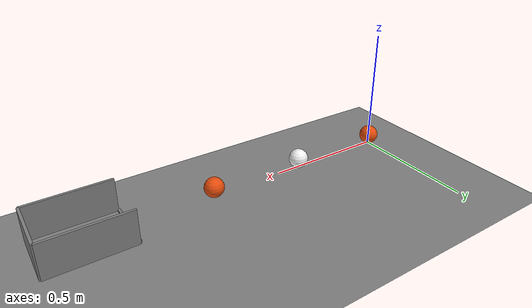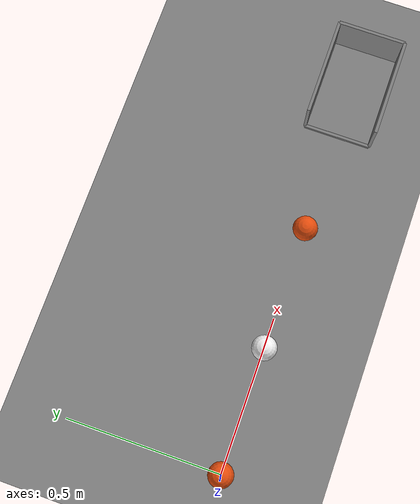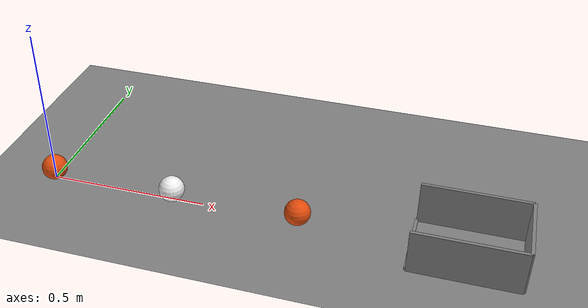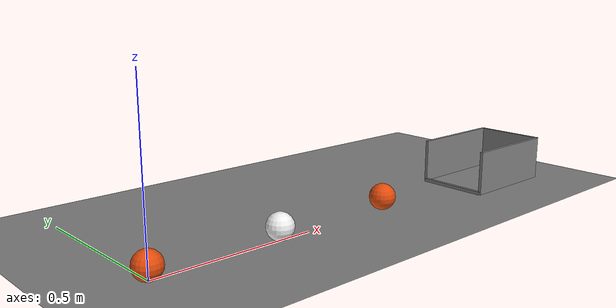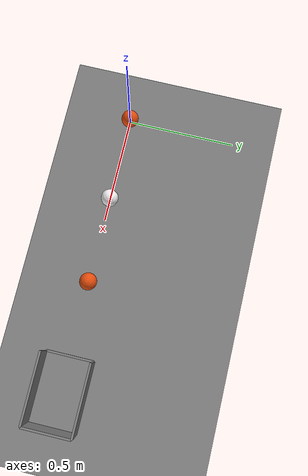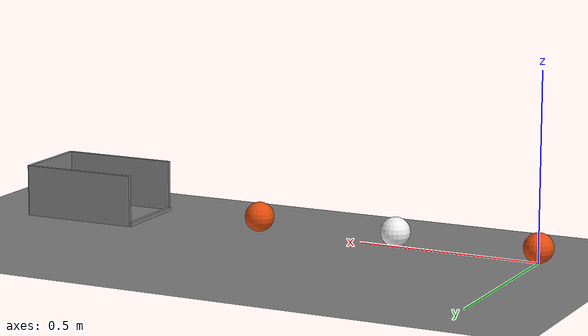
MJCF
<mujoco model="three_balls_rolling_into_a_cup">
  <compiler angle="radian"/>
  <option timestep="0.002"/>
  <worldbody>
    <geom name="floor" type="plane" size="6 6 0.1" friction="0.6 0.001 0.0002"/>
    <body name="ball1" pos="0 0 0.04">
      <freejoint/>
      <geom name="ball1" type="sphere" pos="0 0 0" size="0.04" mass="0.15" condim="6" friction="0.6 0.001 0.0002" solref="0.01 0.2" rgba="0.9 0.3 0.05 1"/>
    </body>
    <body name="ball2" pos="0.4 0 0.04">
      <freejoint/>
      <geom name="ball2" type="sphere" pos="0 0 0" size="0.04" mass="0.15" condim="6" friction="0.6 0.001 0.0002" solref="0.01 0.2" rgba="0.95 0.95 0.95 1"/>
    </body>
    <body name="ball3" pos="0.8 0 0.04">
      <freejoint/>
      <geom name="ball3" type="sphere" pos="0 0 0" size="0.04" mass="0.15" condim="6" friction="0.6 0.001 0.0002" solref="0.01 0.2" rgba="0.9 0.3 0.05 1"/>
    </body>
    <body name="cup">
      <geom name="cup_base" type="box" pos="1.3 0 0.0015" size="0.16 0.11 0.0015"/>
      <geom name="cup_near_wall" type="box" pos="1.14 0 0.005" size="0.005 0.11 0.005"/>
      <geom name="cup_far_wall" type="box" pos="1.46 0 0.07" size="0.005 0.11 0.07"/>
      <geom name="cup_left_wall" type="box" pos="1.3 0.11 0.07" size="0.16 0.005 0.07"/>
      <geom name="cup_right_wall" type="box" pos="1.3 -0.11 0.07" size="0.16 0.005 0.07"/>
    </body>
  </worldbody>
  <keyframe>
    <key name="start" qpos="0 0 0.04 1 0 0 0 0.4 0 0.04 1 0 0 0 0.8 0 0.04 1 0 0 0" qvel="2.5 0 0 0 62.5 0 0 0 0 0 0 0 0 0 0 0 0 0"/>
  </keyframe>
</mujoco>
